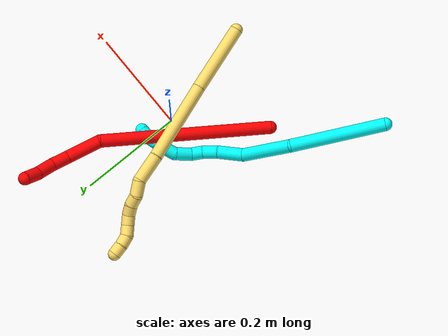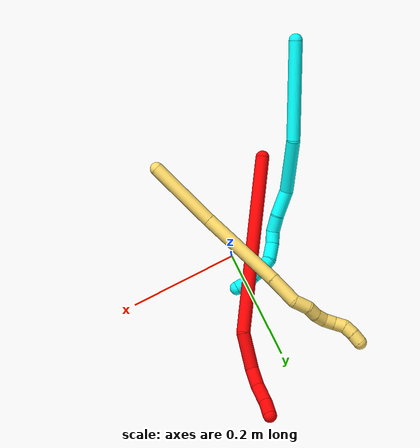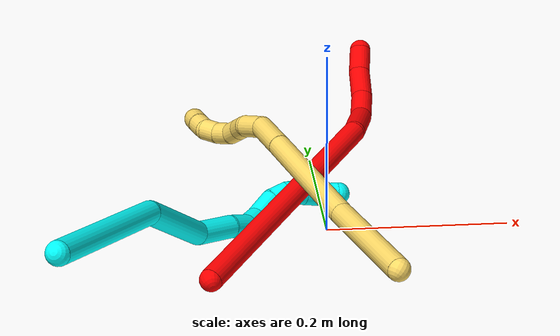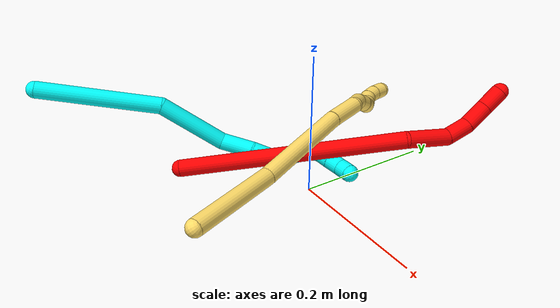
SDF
<sdf version="1.7">
 <world name="default">
  <model name="photoneo_s_sensor">
   <static>1</static>
   <pose>0 0 2 1.57079 1.57079 3.14159</pose>
   <link name="link">
    <inertial><mass>0.1</mass></inertial>
    <sensor name="sensor" type="depth">
     <update_rate>30</update_rate>
     <camera>
      <horizontal_fov>1.22</horizontal_fov>
      <image><width>1920</width><height>1200</height><format>B8G8R8</format></image>
      <clip><near>0.1</near><far>4</far></clip>
      <depth_camera><output>points</output></depth_camera>
     </camera>
     <plugin name="camera_plugin" filename="libgazebo_ros_depth_camera.so">
      <baseline>0.2</baseline>
      <alwaysOn>1</alwaysOn>
      <updateRate>0.0</updateRate>
      <cameraName>camera_ir</cameraName>
      <imageTopicName>/camera/color/image_raw</imageTopicName>
      <cameraInfoTopicName>/camera/color/camera_info</cameraInfoTopicName>
      <depthImageTopicName>/camera/depth/image_raw</depthImageTopicName>
      <depthImageCameraInfoTopicName>/camera/depth/camera_info</depthImageCameraInfoTopicName>
      <pointCloudTopicName>/camera/depth/points</pointCloudTopicName>
      <frameName>fr_optical</frameName>
      <pointCloudCutoff>0.1</pointCloudCutoff>
      <pointCloudCutoffMax>2.0</pointCloudCutoffMax>
      <distortionK1>0</distortionK1>
      <distortionK2>0</distortionK2>
      <distortionK3>0</distortionK3>
      <distortionT1>0</distortionT1>
      <distortionT2>0</distortionT2>
      <CxPrime>0</CxPrime>
      <Cx>0</Cx>
      <Cy>0</Cy>
      <focalLength>0</focalLength>
      <hackBaseline>0</hackBaseline>
     </plugin>
    </sensor>
   </link>
  </model>
  <model name="bin">
   <static>1</static>
   <link name="bottom">
    <collision name="collision-bottom">
     <pose>0 0 -0.01 0 -0 0</pose>
     <geometry><box><size>0.8 0.6 0.02</size></box></geometry>
     <surface>
      <friction><ode><mu>100</mu><mu2>100</mu2></ode></friction>
      <contact><collide_bitmask>65535</collide_bitmask></contact>
     </surface>
    </collision>
   </link>
   <link name="west_wall">
    <collision name="collision-west_wall">
     <pose>-0.41 0 0.1 0 -0 0</pose>
     <geometry><box><size>0.02 0.6 0.2</size></box></geometry>
     <surface>
      <friction><ode><mu>100</mu><mu2>100</mu2></ode></friction>
      <contact><collide_bitmask>65535</collide_bitmask></contact>
     </surface>
    </collision>
   </link>
   <link name="east_wall">
    <collision name="collision-east_wall">
     <pose>0.41 0 0.1 0 -0 0</pose>
     <geometry><box><size>0.02 0.6 0.2</size></box></geometry>
     <surface>
      <friction><ode><mu>100</mu><mu2>100</mu2></ode></friction>
      <contact><collide_bitmask>65535</collide_bitmask></contact>
     </surface>
    </collision>
   </link>
   <link name="south_wall">
    <collision name="collision-south_wall">
     <pose>0 -0.31 0.1 0 -0 0</pose>
     <geometry><box><size>0.8 0.02 0.2</size></box></geometry>
     <surface>
      <friction><ode><mu>100</mu><mu2>100</mu2></ode></friction>
      <contact><collide_bitmask>65535</collide_bitmask></contact>
     </surface>
    </collision>
   </link>
   <link name="north_wall">
    <collision name="collision-north_wall">
     <pose>0 0.31 0.1 0 -0 0</pose>
     <geometry><box><size>0.8 0.02 0.2</size></box></geometry>
     <surface>
      <friction><ode><mu>100</mu><mu2>100</mu2></ode></friction>
      <contact><collide_bitmask>65535</collide_bitmask></contact>
     </surface>
    </collision>
   </link>
  </model>
  <model name="2">
   <static>0</static>
   <link name="2">
    <collision name="collision-cylinder-e_1_1_4">
     <pose>0.087086 0.072429 0.118506 -0.548604 0.560055 -0.161498</pose>
     <geometry><cylinder><radius>0.0125</radius><length>0.327862</length></cylinder></geometry>
     <surface>
      <friction><ode><mu>1.16</mu><mu2>1.16</mu2><slip1>0</slip1><slip2>0</slip2></ode></friction>
      <contact><ode><kp>1e+06</kp><kd>1</kd><max_vel>0</max_vel><min_depth>0.001</min_depth></ode></contact>
     </surface>
    </collision>
    <visual name="visual-cylinder-e_1_1_4">
     <pose>0.087086 0.072429 0.118506 -0.548604 0.560055 -0.161498</pose>
     <geometry><cylinder><radius>0.0125</radius><length>0.327862</length></cylinder></geometry>
     <material><ambient>1 0 0 1</ambient></material>
    </visual>
    <collision name="collision-cylinder-e_2_4_5">
     <pose>0.178755 0.164386 0.264074 -0.625047 0.136496 -0.044165</pose>
     <geometry><cylinder><radius>0.0125</radius><length>0.067372</length></cylinder></geometry>
     <surface>
      <friction><ode><mu>1.16</mu><mu2>1.16</mu2><slip1>0</slip1><slip2>0</slip2></ode></friction>
      <contact><ode><kp>1e+06</kp><kd>1</kd><max_vel>0</max_vel><min_depth>0.001</min_depth></ode></contact>
     </surface>
    </collision>
    <visual name="visual-cylinder-e_2_4_5">
     <pose>0.178755 0.164386 0.264074 -0.625047 0.136496 -0.044165</pose>
     <geometry><cylinder><radius>0.0125</radius><length>0.067372</length></cylinder></geometry>
     <material><ambient>1 0 0 1</ambient></material>
    </visual>
    <collision name="collision-cylinder-e_3_5_6">
     <pose>0.187955 0.186679 0.308167 -0.161032 0.261466 -0.021218</pose>
     <geometry><cylinder><radius>0.0125</radius><length>0.035718</length></cylinder></geometry>
     <surface>
      <friction><ode><mu>1.16</mu><mu2>1.16</mu2><slip1>0</slip1><slip2>0</slip2></ode></friction>
      <contact><ode><kp>1e+06</kp><kd>1</kd><max_vel>0</max_vel><min_depth>0.001</min_depth></ode></contact>
     </surface>
    </collision>
    <visual name="visual-cylinder-e_3_5_6">
     <pose>0.187955 0.186679 0.308167 -0.161032 0.261466 -0.021218</pose>
     <geometry><cylinder><radius>0.0125</radius><length>0.035718</length></cylinder></geometry>
     <material><ambient>1 0 0 1</ambient></material>
    </visual>
    <collision name="collision-cylinder-e_4_6_7">
     <pose>0.196999 0.187576 0.343319 0.102787 0.238356 0.012319</pose>
     <geometry><cylinder><radius>0.0125</radius><length>0.0375</length></cylinder></geometry>
     <surface>
      <friction><ode><mu>1.16</mu><mu2>1.16</mu2><slip1>0</slip1><slip2>0</slip2></ode></friction>
      <contact><ode><kp>1e+06</kp><kd>1</kd><max_vel>0</max_vel><min_depth>0.001</min_depth></ode></contact>
     </surface>
    </collision>
    <visual name="visual-cylinder-e_4_6_7">
     <pose>0.196999 0.187576 0.343319 0.102787 0.238356 0.012319</pose>
     <geometry><cylinder><radius>0.0125</radius><length>0.0375</length></cylinder></geometry>
     <material><ambient>1 0 0 1</ambient></material>
    </visual>
    <collision name="collision-cylinder-e_5_7_2">
     <pose>0.20734 0.182994 0.375812 0.186572 0.384341 0.036403</pose>
     <geometry><cylinder><radius>0.0125</radius><length>0.031548</length></cylinder></geometry>
     <surface>
      <friction><ode><mu>1.16</mu><mu2>1.16</mu2><slip1>0</slip1><slip2>0</slip2></ode></friction>
      <contact><ode><kp>1e+06</kp><kd>1</kd><max_vel>0</max_vel><min_depth>0.001</min_depth></ode></contact>
     </surface>
    </collision>
    <visual name="visual-cylinder-e_5_7_2">
     <pose>0.20734 0.182994 0.375812 0.186572 0.384341 0.036403</pose>
     <geometry><cylinder><radius>0.0125</radius><length>0.031548</length></cylinder></geometry>
     <material><ambient>1 0 0 1</ambient></material>
    </visual>
    <collision name="collision-sphere-2">
     <pose>0.213254 0.180282 0.390181 0 -0 0</pose>
     <geometry><sphere><radius>0.0125</radius></sphere></geometry>
     <surface>
      <friction><ode><mu>1.16</mu><mu2>1.16</mu2><slip1>0</slip1><slip2>0</slip2></ode></friction>
      <contact><ode><kp>1e+06</kp><kd>1</kd><max_vel>0</max_vel><min_depth>0.001</min_depth></ode></contact>
     </surface>
    </collision>
    <visual name="visual-sphere-2">
     <pose>0.213254 0.180282 0.390181 0 -0 0</pose>
     <geometry><sphere><radius>0.0125</radius></sphere></geometry>
     <material><ambient>1 0 0 1</ambient></material>
    </visual>
    <collision name="collision-sphere-7">
     <pose>0.201426 0.185707 0.361443 0 -0 0</pose>
     <geometry><sphere><radius>0.0125</radius></sphere></geometry>
     <surface>
      <friction><ode><mu>1.16</mu><mu2>1.16</mu2><slip1>0</slip1><slip2>0</slip2></ode></friction>
      <contact><ode><kp>1e+06</kp><kd>1</kd><max_vel>0</max_vel><min_depth>0.001</min_depth></ode></contact>
     </surface>
    </collision>
    <visual name="visual-sphere-7">
     <pose>0.201426 0.185707 0.361443 0 -0 0</pose>
     <geometry><sphere><radius>0.0125</radius></sphere></geometry>
     <material><ambient>1 0 0 1</ambient></material>
    </visual>
    <collision name="collision-sphere-6">
     <pose>0.192572 0.189446 0.325195 0 -0 0</pose>
     <geometry><sphere><radius>0.0125</radius></sphere></geometry>
     <surface>
      <friction><ode><mu>1.16</mu><mu2>1.16</mu2><slip1>0</slip1><slip2>0</slip2></ode></friction>
      <contact><ode><kp>1e+06</kp><kd>1</kd><max_vel>0</max_vel><min_depth>0.001</min_depth></ode></contact>
     </surface>
    </collision>
    <visual name="visual-sphere-6">
     <pose>0.192572 0.189446 0.325195 0 -0 0</pose>
     <geometry><sphere><radius>0.0125</radius></sphere></geometry>
     <material><ambient>1 0 0 1</ambient></material>
    </visual>
    <collision name="collision-sphere-5">
     <pose>0.183339 0.183913 0.291138 0 -0 0</pose>
     <geometry><sphere><radius>0.0125</radius></sphere></geometry>
     <surface>
      <friction><ode><mu>1.16</mu><mu2>1.16</mu2><slip1>0</slip1><slip2>0</slip2></ode></friction>
      <contact><ode><kp>1e+06</kp><kd>1</kd><max_vel>0</max_vel><min_depth>0.001</min_depth></ode></contact>
     </surface>
    </collision>
    <visual name="visual-sphere-5">
     <pose>0.183339 0.183913 0.291138 0 -0 0</pose>
     <geometry><sphere><radius>0.0125</radius></sphere></geometry>
     <material><ambient>1 0 0 1</ambient></material>
    </visual>
    <collision name="collision-sphere-1">
     <geometry><sphere><radius>0.0125</radius></sphere></geometry>
     <surface>
      <friction><ode><mu>1.16</mu><mu2>1.16</mu2><slip1>0</slip1><slip2>0</slip2></ode></friction>
      <contact><ode><kp>1e+06</kp><kd>1</kd><max_vel>0</max_vel><min_depth>0.001</min_depth></ode></contact>
     </surface>
    </collision>
    <visual name="visual-sphere-1">
     <geometry><sphere><radius>0.0125</radius></sphere></geometry>
     <material><ambient>1 0 0 1</ambient></material>
    </visual>
    <collision name="collision-sphere-4">
     <pose>0.174171 0.144858 0.237011 0 -0 0</pose>
     <geometry><sphere><radius>0.0125</radius></sphere></geometry>
     <surface>
      <friction><ode><mu>1.16</mu><mu2>1.16</mu2><slip1>0</slip1><slip2>0</slip2></ode></friction>
      <contact><ode><kp>1e+06</kp><kd>1</kd><max_vel>0</max_vel><min_depth>0.001</min_depth></ode></contact>
     </surface>
    </collision>
    <visual name="visual-sphere-4">
     <pose>0.174171 0.144858 0.237011 0 -0 0</pose>
     <geometry><sphere><radius>0.0125</radius></sphere></geometry>
     <material><ambient>1 0 0 1</ambient></material>
    </visual>
    <inertial>
     <pose>0.122474 0.108593 0.184764 0 -0 0</pose>
     <mass>0.5</mass>
     <inertia>
      <ixx>0.002122</ixx>
      <ixy>0</ixy>
      <ixz>0</ixz>
      <iyy>0.002264</iyy>
      <iyz>0</iyz>
      <izz>-0.002864</izz>
     </inertia>
    </inertial>
   </link>
   <pose>-0.131992 -0.136514 0.011703 -1.13619 -0.463914 -0.026741</pose>
  </model>
  <model name="3">
   <static>0</static>
   <link name="3">
    <collision name="collision-cylinder-e_1_1_4">
     <pose>0.003632 0.031284 -0.084087 -2.78542 0.040457 -0.22386</pose>
     <geometry><cylinder><radius>0.0125</radius><length>0.179582</length></cylinder></geometry>
     <surface>
      <friction><ode><mu>1.16</mu><mu2>1.16</mu2><slip1>0</slip1><slip2>0</slip2></ode></friction>
      <contact><ode><kp>1e+06</kp><kd>1</kd><max_vel>0</max_vel><min_depth>0.001</min_depth></ode></contact>
     </surface>
    </collision>
    <visual name="visual-cylinder-e_1_1_4">
     <pose>0.003632 0.031284 -0.084087 -2.78542 0.040457 -0.22386</pose>
     <geometry><cylinder><radius>0.0125</radius><length>0.179582</length></cylinder></geometry>
     <material><ambient>0.003922 1 0.996078 1</ambient></material>
    </visual>
    <collision name="collision-cylinder-e_2_4_5">
     <pose>0.017989 0.060933 -0.21939 3.10969 0.206321 2.83582</pose>
     <geometry><cylinder><radius>0.0125</radius><length>0.104707</length></cylinder></geometry>
     <surface>
      <friction><ode><mu>1.16</mu><mu2>1.16</mu2><slip1>0</slip1><slip2>0</slip2></ode></friction>
      <contact><ode><kp>1e+06</kp><kd>1</kd><max_vel>0</max_vel><min_depth>0.001</min_depth></ode></contact>
     </surface>
    </collision>
    <visual name="visual-cylinder-e_2_4_5">
     <pose>0.017989 0.060933 -0.21939 3.10969 0.206321 2.83582</pose>
     <geometry><cylinder><radius>0.0125</radius><length>0.104707</length></cylinder></geometry>
     <material><ambient>0.003922 1 0.996078 1</ambient></material>
    </visual>
    <collision name="collision-cylinder-e_3_5_6">
     <pose>0.037507 0.068718 -0.291455 -2.7172 0.36695 -1.42205</pose>
     <geometry><cylinder><radius>0.0125</radius><length>0.049017</length></cylinder></geometry>
     <surface>
      <friction><ode><mu>1.16</mu><mu2>1.16</mu2><slip1>0</slip1><slip2>0</slip2></ode></friction>
      <contact><ode><kp>1e+06</kp><kd>1</kd><max_vel>0</max_vel><min_depth>0.001</min_depth></ode></contact>
     </surface>
    </collision>
    <visual name="visual-cylinder-e_3_5_6">
     <pose>0.037507 0.068718 -0.291455 -2.7172 0.36695 -1.42205</pose>
     <geometry><cylinder><radius>0.0125</radius><length>0.049017</length></cylinder></geometry>
     <material><ambient>0.003922 1 0.996078 1</ambient></material>
    </visual>
    <collision name="collision-cylinder-e_4_6_7">
     <pose>0.050759 0.081877 -0.326404 -2.88243 0.296638 -1.70717</pose>
     <geometry><cylinder><radius>0.0125</radius><length>0.030511</length></cylinder></geometry>
     <surface>
      <friction><ode><mu>1.16</mu><mu2>1.16</mu2><slip1>0</slip1><slip2>0</slip2></ode></friction>
      <contact><ode><kp>1e+06</kp><kd>1</kd><max_vel>0</max_vel><min_depth>0.001</min_depth></ode></contact>
     </surface>
    </collision>
    <visual name="visual-cylinder-e_4_6_7">
     <pose>0.050759 0.081877 -0.326404 -2.88243 0.296638 -1.70717</pose>
     <geometry><cylinder><radius>0.0125</radius><length>0.030511</length></cylinder></geometry>
     <material><ambient>0.003922 1 0.996078 1</ambient></material>
    </visual>
    <collision name="collision-cylinder-e_5_7_8">
     <pose>0.05559 0.091488 -0.350363 -2.60433 0.032399 -0.117566</pose>
     <geometry><cylinder><radius>0.0125</radius><length>0.022959</length></cylinder></geometry>
     <surface>
      <friction><ode><mu>1.16</mu><mu2>1.16</mu2><slip1>0</slip1><slip2>0</slip2></ode></friction>
      <contact><ode><kp>1e+06</kp><kd>1</kd><max_vel>0</max_vel><min_depth>0.001</min_depth></ode></contact>
     </surface>
    </collision>
    <visual name="visual-cylinder-e_5_7_8">
     <pose>0.05559 0.091488 -0.350363 -2.60433 0.032399 -0.117566</pose>
     <geometry><cylinder><radius>0.0125</radius><length>0.022959</length></cylinder></geometry>
     <material><ambient>0.003922 1 0.996078 1</ambient></material>
    </visual>
    <collision name="collision-cylinder-e_6_8_9">
     <pose>0.057525 0.109882 -0.370328 -2.24993 0.096837 -0.202087</pose>
     <geometry><cylinder><radius>0.0125</radius><length>0.032338</length></cylinder></geometry>
     <surface>
      <friction><ode><mu>1.16</mu><mu2>1.16</mu2><slip1>0</slip1><slip2>0</slip2></ode></friction>
      <contact><ode><kp>1e+06</kp><kd>1</kd><max_vel>0</max_vel><min_depth>0.001</min_depth></ode></contact>
     </surface>
    </collision>
    <visual name="visual-cylinder-e_6_8_9">
     <pose>0.057525 0.109882 -0.370328 -2.24993 0.096837 -0.202087</pose>
     <geometry><cylinder><radius>0.0125</radius><length>0.032338</length></cylinder></geometry>
     <material><ambient>0.003922 1 0.996078 1</ambient></material>
    </visual>
    <collision name="collision-cylinder-e_7_9_10">
     <pose>0.064462 0.129345 -0.385341 -2.18598 0.563869 -1.02</pose>
     <geometry><cylinder><radius>0.0125</radius><length>0.020109</length></cylinder></geometry>
     <surface>
      <friction><ode><mu>1.16</mu><mu2>1.16</mu2><slip1>0</slip1><slip2>0</slip2></ode></friction>
      <contact><ode><kp>1e+06</kp><kd>1</kd><max_vel>0</max_vel><min_depth>0.001</min_depth></ode></contact>
     </surface>
    </collision>
    <visual name="visual-cylinder-e_7_9_10">
     <pose>0.064462 0.129345 -0.385341 -2.18598 0.563869 -1.02</pose>
     <geometry><cylinder><radius>0.0125</radius><length>0.020109</length></cylinder></geometry>
     <material><ambient>0.003922 1 0.996078 1</ambient></material>
    </visual>
    <collision name="collision-cylinder-e_8_10_11">
     <pose>0.077453 0.139047 -0.396535 -2.72781 0.837025 -2.25977</pose>
     <geometry><cylinder><radius>0.0125</radius><length>0.020514</length></cylinder></geometry>
     <surface>
      <friction><ode><mu>1.16</mu><mu2>1.16</mu2><slip1>0</slip1><slip2>0</slip2></ode></friction>
      <contact><ode><kp>1e+06</kp><kd>1</kd><max_vel>0</max_vel><min_depth>0.001</min_depth></ode></contact>
     </surface>
    </collision>
    <visual name="visual-cylinder-e_8_10_11">
     <pose>0.077453 0.139047 -0.396535 -2.72781 0.837025 -2.25977</pose>
     <geometry><cylinder><radius>0.0125</radius><length>0.020514</length></cylinder></geometry>
     <material><ambient>0.003922 1 0.996078 1</ambient></material>
    </visual>
    <collision name="collision-cylinder-e_9_11_12">
     <pose>0.092406 0.144735 -0.408989 -2.69835 0.821451 -2.18666</pose>
     <geometry><cylinder><radius>0.0125</radius><length>0.020037</length></cylinder></geometry>
     <surface>
      <friction><ode><mu>1.16</mu><mu2>1.16</mu2><slip1>0</slip1><slip2>0</slip2></ode></friction>
      <contact><ode><kp>1e+06</kp><kd>1</kd><max_vel>0</max_vel><min_depth>0.001</min_depth></ode></contact>
     </surface>
    </collision>
    <visual name="visual-cylinder-e_9_11_12">
     <pose>0.092406 0.144735 -0.408989 -2.69835 0.821451 -2.18666</pose>
     <geometry><cylinder><radius>0.0125</radius><length>0.020037</length></cylinder></geometry>
     <material><ambient>0.003922 1 0.996078 1</ambient></material>
    </visual>
    <collision name="collision-cylinder-e_10_12_2">
     <pose>0.108368 0.151911 -0.418283 -2.2056 1.0219 -1.67419</pose>
     <geometry><cylinder><radius>0.0125</radius><length>0.020226</length></cylinder></geometry>
     <surface>
      <friction><ode><mu>1.16</mu><mu2>1.16</mu2><slip1>0</slip1><slip2>0</slip2></ode></friction>
      <contact><ode><kp>1e+06</kp><kd>1</kd><max_vel>0</max_vel><min_depth>0.001</min_depth></ode></contact>
     </surface>
    </collision>
    <visual name="visual-cylinder-e_10_12_2">
     <pose>0.108368 0.151911 -0.418283 -2.2056 1.0219 -1.67419</pose>
     <geometry><cylinder><radius>0.0125</radius><length>0.020226</length></cylinder></geometry>
     <material><ambient>0.003922 1 0.996078 1</ambient></material>
    </visual>
    <collision name="collision-sphere-2">
     <pose>0.116995 0.156159 -0.421412 0 -0 0</pose>
     <geometry><sphere><radius>0.0125</radius></sphere></geometry>
     <surface>
      <friction><ode><mu>1.16</mu><mu2>1.16</mu2><slip1>0</slip1><slip2>0</slip2></ode></friction>
      <contact><ode><kp>1e+06</kp><kd>1</kd><max_vel>0</max_vel><min_depth>0.001</min_depth></ode></contact>
     </surface>
    </collision>
    <visual name="visual-sphere-2">
     <pose>0.116995 0.156159 -0.421412 0 -0 0</pose>
     <geometry><sphere><radius>0.0125</radius></sphere></geometry>
     <material><ambient>0.003922 1 0.996078 1</ambient></material>
    </visual>
    <collision name="collision-sphere-12">
     <pose>0.099741 0.147662 -0.415154 0 -0 0</pose>
     <geometry><sphere><radius>0.0125</radius></sphere></geometry>
     <surface>
      <friction><ode><mu>1.16</mu><mu2>1.16</mu2><slip1>0</slip1><slip2>0</slip2></ode></friction>
      <contact><ode><kp>1e+06</kp><kd>1</kd><max_vel>0</max_vel><min_depth>0.001</min_depth></ode></contact>
     </surface>
    </collision>
    <visual name="visual-sphere-12">
     <pose>0.099741 0.147662 -0.415154 0 -0 0</pose>
     <geometry><sphere><radius>0.0125</radius></sphere></geometry>
     <material><ambient>0.003922 1 0.996078 1</ambient></material>
    </visual>
    <collision name="collision-sphere-11">
     <pose>0.085071 0.141809 -0.402824 0 -0 0</pose>
     <geometry><sphere><radius>0.0125</radius></sphere></geometry>
     <surface>
      <friction><ode><mu>1.16</mu><mu2>1.16</mu2><slip1>0</slip1><slip2>0</slip2></ode></friction>
      <contact><ode><kp>1e+06</kp><kd>1</kd><max_vel>0</max_vel><min_depth>0.001</min_depth></ode></contact>
     </surface>
    </collision>
    <visual name="visual-sphere-11">
     <pose>0.085071 0.141809 -0.402824 0 -0 0</pose>
     <geometry><sphere><radius>0.0125</radius></sphere></geometry>
     <material><ambient>0.003922 1 0.996078 1</ambient></material>
    </visual>
    <collision name="collision-sphere-10">
     <pose>0.069836 0.136285 -0.390246 0 -0 0</pose>
     <geometry><sphere><radius>0.0125</radius></sphere></geometry>
     <surface>
      <friction><ode><mu>1.16</mu><mu2>1.16</mu2><slip1>0</slip1><slip2>0</slip2></ode></friction>
      <contact><ode><kp>1e+06</kp><kd>1</kd><max_vel>0</max_vel><min_depth>0.001</min_depth></ode></contact>
     </surface>
    </collision>
    <visual name="visual-sphere-10">
     <pose>0.069836 0.136285 -0.390246 0 -0 0</pose>
     <geometry><sphere><radius>0.0125</radius></sphere></geometry>
     <material><ambient>0.003922 1 0.996078 1</ambient></material>
    </visual>
    <collision name="collision-sphere-9">
     <pose>0.059088 0.122405 -0.380437 0 -0 0</pose>
     <geometry><sphere><radius>0.0125</radius></sphere></geometry>
     <surface>
      <friction><ode><mu>1.16</mu><mu2>1.16</mu2><slip1>0</slip1><slip2>0</slip2></ode></friction>
      <contact><ode><kp>1e+06</kp><kd>1</kd><max_vel>0</max_vel><min_depth>0.001</min_depth></ode></contact>
     </surface>
    </collision>
    <visual name="visual-sphere-9">
     <pose>0.059088 0.122405 -0.380437 0 -0 0</pose>
     <geometry><sphere><radius>0.0125</radius></sphere></geometry>
     <material><ambient>0.003922 1 0.996078 1</ambient></material>
    </visual>
    <collision name="collision-sphere-4">
     <pose>0.007263 0.062567 -0.168173 0 -0 0</pose>
     <geometry><sphere><radius>0.0125</radius></sphere></geometry>
     <surface>
      <friction><ode><mu>1.16</mu><mu2>1.16</mu2><slip1>0</slip1><slip2>0</slip2></ode></friction>
      <contact><ode><kp>1e+06</kp><kd>1</kd><max_vel>0</max_vel><min_depth>0.001</min_depth></ode></contact>
     </surface>
    </collision>
    <visual name="visual-sphere-4">
     <pose>0.007263 0.062567 -0.168173 0 -0 0</pose>
     <geometry><sphere><radius>0.0125</radius></sphere></geometry>
     <material><ambient>0.003922 1 0.996078 1</ambient></material>
    </visual>
    <collision name="collision-sphere-1">
     <geometry><sphere><radius>0.0125</radius></sphere></geometry>
     <surface>
      <friction><ode><mu>1.16</mu><mu2>1.16</mu2><slip1>0</slip1><slip2>0</slip2></ode></friction>
      <contact><ode><kp>1e+06</kp><kd>1</kd><max_vel>0</max_vel><min_depth>0.001</min_depth></ode></contact>
     </surface>
    </collision>
    <visual name="visual-sphere-1">
     <geometry><sphere><radius>0.0125</radius></sphere></geometry>
     <material><ambient>0.003922 1 0.996078 1</ambient></material>
    </visual>
    <collision name="collision-sphere-8">
     <pose>0.055962 0.09736 -0.36022 0 -0 0</pose>
     <geometry><sphere><radius>0.0125</radius></sphere></geometry>
     <surface>
      <friction><ode><mu>1.16</mu><mu2>1.16</mu2><slip1>0</slip1><slip2>0</slip2></ode></friction>
      <contact><ode><kp>1e+06</kp><kd>1</kd><max_vel>0</max_vel><min_depth>0.001</min_depth></ode></contact>
     </surface>
    </collision>
    <visual name="visual-sphere-8">
     <pose>0.055962 0.09736 -0.36022 0 -0 0</pose>
     <geometry><sphere><radius>0.0125</radius></sphere></geometry>
     <material><ambient>0.003922 1 0.996078 1</ambient></material>
    </visual>
    <collision name="collision-sphere-5">
     <pose>0.028714 0.059298 -0.270608 0 -0 0</pose>
     <geometry><sphere><radius>0.0125</radius></sphere></geometry>
     <surface>
      <friction><ode><mu>1.16</mu><mu2>1.16</mu2><slip1>0</slip1><slip2>0</slip2></ode></friction>
      <contact><ode><kp>1e+06</kp><kd>1</kd><max_vel>0</max_vel><min_depth>0.001</min_depth></ode></contact>
     </surface>
    </collision>
    <visual name="visual-sphere-5">
     <pose>0.028714 0.059298 -0.270608 0 -0 0</pose>
     <geometry><sphere><radius>0.0125</radius></sphere></geometry>
     <material><ambient>0.003922 1 0.996078 1</ambient></material>
    </visual>
    <collision name="collision-sphere-6">
     <pose>0.0463 0.078138 -0.312302 0 -0 0</pose>
     <geometry><sphere><radius>0.0125</radius></sphere></geometry>
     <surface>
      <friction><ode><mu>1.16</mu><mu2>1.16</mu2><slip1>0</slip1><slip2>0</slip2></ode></friction>
      <contact><ode><kp>1e+06</kp><kd>1</kd><max_vel>0</max_vel><min_depth>0.001</min_depth></ode></contact>
     </surface>
    </collision>
    <visual name="visual-sphere-6">
     <pose>0.0463 0.078138 -0.312302 0 -0 0</pose>
     <geometry><sphere><radius>0.0125</radius></sphere></geometry>
     <material><ambient>0.003922 1 0.996078 1</ambient></material>
    </visual>
    <collision name="collision-sphere-7">
     <pose>0.055218 0.085616 -0.340506 0 -0 0</pose>
     <geometry><sphere><radius>0.0125</radius></sphere></geometry>
     <surface>
      <friction><ode><mu>1.16</mu><mu2>1.16</mu2><slip1>0</slip1><slip2>0</slip2></ode></friction>
      <contact><ode><kp>1e+06</kp><kd>1</kd><max_vel>0</max_vel><min_depth>0.001</min_depth></ode></contact>
     </surface>
    </collision>
    <visual name="visual-sphere-7">
     <pose>0.055218 0.085616 -0.340506 0 -0 0</pose>
     <geometry><sphere><radius>0.0125</radius></sphere></geometry>
     <material><ambient>0.003922 1 0.996078 1</ambient></material>
    </visual>
    <inertial>
     <pose>0.031976 0.069889 -0.229751 0 -0 0</pose>
     <mass>0.5</mass>
     <inertia>
      <ixx>0.000302</ixx>
      <ixy>0</ixy>
      <ixz>0</ixz>
      <iyy>-0.000436</iyy>
      <iyz>0</iyz>
      <izz>-0.000263</izz>
     </inertia>
    </inertial>
   </link>
   <pose>-0.274941 -0.288501 0.119423 1.03955 0.206362 -0.48667</pose>
  </model>
  <model name="5">
   <static>0</static>
   <link name="5">
    <collision name="collision-cylinder-e_1_1_4">
     <pose>0.005921 0.061892 0.025381 -1.18163 0.088282 -0.059235</pose>
     <geometry><cylinder><radius>0.0125</radius><length>0.134312</length></cylinder></geometry>
     <surface>
      <friction><ode><mu>1.16</mu><mu2>1.16</mu2><slip1>0</slip1><slip2>0</slip2></ode></friction>
      <contact><ode><kp>1e+06</kp><kd>1</kd><max_vel>0</max_vel><min_depth>0.001</min_depth></ode></contact>
     </surface>
    </collision>
    <visual name="visual-cylinder-e_1_1_4">
     <pose>0.005921 0.061892 0.025381 -1.18163 0.088282 -0.059235</pose>
     <geometry><cylinder><radius>0.0125</radius><length>0.134312</length></cylinder></geometry>
     <material><ambient>1 0.858824 0.4 1</ambient></material>
    </visual>
    <collision name="collision-cylinder-e_2_4_5">
     <pose>0.01211 0.195949 0.083529 -1.14456 0.003383 -0.002179</pose>
     <geometry><cylinder><radius>0.0125</radius><length>0.158512</length></cylinder></geometry>
     <surface>
      <friction><ode><mu>1.16</mu><mu2>1.16</mu2><slip1>0</slip1><slip2>0</slip2></ode></friction>
      <contact><ode><kp>1e+06</kp><kd>1</kd><max_vel>0</max_vel><min_depth>0.001</min_depth></ode></contact>
     </surface>
    </collision>
    <visual name="visual-cylinder-e_2_4_5">
     <pose>0.01211 0.195949 0.083529 -1.14456 0.003383 -0.002179</pose>
     <geometry><cylinder><radius>0.0125</radius><length>0.158512</length></cylinder></geometry>
     <material><ambient>1 0.858824 0.4 1</ambient></material>
    </visual>
    <collision name="collision-cylinder-e_3_5_6">
     <pose>0.015165 0.293311 0.127334 -1.15794 0.100954 -0.066025</pose>
     <geometry><cylinder><radius>0.0125</radius><length>0.055297</length></cylinder></geometry>
     <surface>
      <friction><ode><mu>1.16</mu><mu2>1.16</mu2><slip1>0</slip1><slip2>0</slip2></ode></friction>
      <contact><ode><kp>1e+06</kp><kd>1</kd><max_vel>0</max_vel><min_depth>0.001</min_depth></ode></contact>
     </surface>
    </collision>
    <visual name="visual-cylinder-e_3_5_6">
     <pose>0.015165 0.293311 0.127334 -1.15794 0.100954 -0.066025</pose>
     <geometry><cylinder><radius>0.0125</radius><length>0.055297</length></cylinder></geometry>
     <material><ambient>1 0.858824 0.4 1</ambient></material>
    </visual>
    <collision name="collision-cylinder-e_4_6_7">
     <pose>0.018854 0.332986 0.137634 -1.62166 0.0622 -0.065445</pose>
     <geometry><cylinder><radius>0.0125</radius><length>0.029052</length></cylinder></geometry>
     <surface>
      <friction><ode><mu>1.16</mu><mu2>1.16</mu2><slip1>0</slip1><slip2>0</slip2></ode></friction>
      <contact><ode><kp>1e+06</kp><kd>1</kd><max_vel>0</max_vel><min_depth>0.001</min_depth></ode></contact>
     </surface>
    </collision>
    <visual name="visual-cylinder-e_4_6_7">
     <pose>0.018854 0.332986 0.137634 -1.62166 0.0622 -0.065445</pose>
     <geometry><cylinder><radius>0.0125</radius><length>0.029052</length></cylinder></geometry>
     <material><ambient>1 0.858824 0.4 1</ambient></material>
    </visual>
    <collision name="collision-cylinder-e_5_7_8">
     <pose>0.024608 0.356778 0.136723 -1.58945 0.480142 -0.488829</pose>
     <geometry><cylinder><radius>0.0125</radius><length>0.021002</length></cylinder></geometry>
     <surface>
      <friction><ode><mu>1.16</mu><mu2>1.16</mu2><slip1>0</slip1><slip2>0</slip2></ode></friction>
      <contact><ode><kp>1e+06</kp><kd>1</kd><max_vel>0</max_vel><min_depth>0.001</min_depth></ode></contact>
     </surface>
    </collision>
    <visual name="visual-cylinder-e_5_7_8">
     <pose>0.024608 0.356778 0.136723 -1.58945 0.480142 -0.488829</pose>
     <geometry><cylinder><radius>0.0125</radius><length>0.021002</length></cylinder></geometry>
     <material><ambient>1 0.858824 0.4 1</ambient></material>
    </visual>
    <collision name="collision-cylinder-e_6_8_9">
     <pose>0.032933 0.375528 0.134396 -1.79519 0.344644 -0.429756</pose>
     <geometry><cylinder><radius>0.0125</radius><length>0.020571</length></cylinder></geometry>
     <surface>
      <friction><ode><mu>1.16</mu><mu2>1.16</mu2><slip1>0</slip1><slip2>0</slip2></ode></friction>
      <contact><ode><kp>1e+06</kp><kd>1</kd><max_vel>0</max_vel><min_depth>0.001</min_depth></ode></contact>
     </surface>
    </collision>
    <visual name="visual-cylinder-e_6_8_9">
     <pose>0.032933 0.375528 0.134396 -1.79519 0.344644 -0.429756</pose>
     <geometry><cylinder><radius>0.0125</radius><length>0.020571</length></cylinder></geometry>
     <material><ambient>1 0.858824 0.4 1</ambient></material>
    </visual>
    <collision name="collision-cylinder-e_7_9_10">
     <pose>0.036148 0.395058 0.130914 -1.70158 -0.025537 0.029115</pose>
     <geometry><cylinder><radius>0.0125</radius><length>0.020366</length></cylinder></geometry>
     <surface>
      <friction><ode><mu>1.16</mu><mu2>1.16</mu2><slip1>0</slip1><slip2>0</slip2></ode></friction>
      <contact><ode><kp>1e+06</kp><kd>1</kd><max_vel>0</max_vel><min_depth>0.001</min_depth></ode></contact>
     </surface>
    </collision>
    <visual name="visual-cylinder-e_7_9_10">
     <pose>0.036148 0.395058 0.130914 -1.70158 -0.025537 0.029115</pose>
     <geometry><cylinder><radius>0.0125</radius><length>0.020366</length></cylinder></geometry>
     <material><ambient>1 0.858824 0.4 1</ambient></material>
    </visual>
    <collision name="collision-cylinder-e_8_10_11">
     <pose>0.033877 0.415204 0.129563 -1.5731 -0.197466 0.197918</pose>
     <geometry><cylinder><radius>0.0125</radius><length>0.020505</length></cylinder></geometry>
     <surface>
      <friction><ode><mu>1.16</mu><mu2>1.16</mu2><slip1>0</slip1><slip2>0</slip2></ode></friction>
      <contact><ode><kp>1e+06</kp><kd>1</kd><max_vel>0</max_vel><min_depth>0.001</min_depth></ode></contact>
     </surface>
    </collision>
    <visual name="visual-cylinder-e_8_10_11">
     <pose>0.033877 0.415204 0.129563 -1.5731 -0.197466 0.197918</pose>
     <geometry><cylinder><radius>0.0125</radius><length>0.020505</length></cylinder></geometry>
     <material><ambient>1 0.858824 0.4 1</ambient></material>
    </visual>
    <collision name="collision-cylinder-e_9_11_12">
     <pose>0.032648 0.434662 0.132956 -1.22244 0.078069 -0.05472</pose>
     <geometry><cylinder><radius>0.0125</radius><length>0.020073</length></cylinder></geometry>
     <surface>
      <friction><ode><mu>1.16</mu><mu2>1.16</mu2><slip1>0</slip1><slip2>0</slip2></ode></friction>
      <contact><ode><kp>1e+06</kp><kd>1</kd><max_vel>0</max_vel><min_depth>0.001</min_depth></ode></contact>
     </surface>
    </collision>
    <visual name="visual-cylinder-e_9_11_12">
     <pose>0.032648 0.434662 0.132956 -1.22244 0.078069 -0.05472</pose>
     <geometry><cylinder><radius>0.0125</radius><length>0.020073</length></cylinder></geometry>
     <material><ambient>1 0.858824 0.4 1</ambient></material>
    </visual>
    <collision name="collision-cylinder-e_10_12_2">
     <pose>0.035748 0.453166 0.140239 -1.1689 0.230166 -0.152644</pose>
     <geometry><cylinder><radius>0.0125</radius><length>0.02031</length></cylinder></geometry>
     <surface>
      <friction><ode><mu>1.16</mu><mu2>1.16</mu2><slip1>0</slip1><slip2>0</slip2></ode></friction>
      <contact><ode><kp>1e+06</kp><kd>1</kd><max_vel>0</max_vel><min_depth>0.001</min_depth></ode></contact>
     </surface>
    </collision>
    <visual name="visual-cylinder-e_10_12_2">
     <pose>0.035748 0.453166 0.140239 -1.1689 0.230166 -0.152644</pose>
     <geometry><cylinder><radius>0.0125</radius><length>0.02031</length></cylinder></geometry>
     <material><ambient>1 0.858824 0.4 1</ambient></material>
    </visual>
    <collision name="collision-sphere-2">
     <pose>0.038064 0.462266 0.144106 0 -0 0</pose>
     <geometry><sphere><radius>0.0125</radius></sphere></geometry>
     <surface>
      <friction><ode><mu>1.16</mu><mu2>1.16</mu2><slip1>0</slip1><slip2>0</slip2></ode></friction>
      <contact><ode><kp>1e+06</kp><kd>1</kd><max_vel>0</max_vel><min_depth>0.001</min_depth></ode></contact>
     </surface>
    </collision>
    <visual name="visual-sphere-2">
     <pose>0.038064 0.462266 0.144106 0 -0 0</pose>
     <geometry><sphere><radius>0.0125</radius></sphere></geometry>
     <material><ambient>1 0.858824 0.4 1</ambient></material>
    </visual>
    <collision name="collision-sphere-12">
     <pose>0.033431 0.444067 0.136371 0 -0 0</pose>
     <geometry><sphere><radius>0.0125</radius></sphere></geometry>
     <surface>
      <friction><ode><mu>1.16</mu><mu2>1.16</mu2><slip1>0</slip1><slip2>0</slip2></ode></friction>
      <contact><ode><kp>1e+06</kp><kd>1</kd><max_vel>0</max_vel><min_depth>0.001</min_depth></ode></contact>
     </surface>
    </collision>
    <visual name="visual-sphere-12">
     <pose>0.033431 0.444067 0.136371 0 -0 0</pose>
     <geometry><sphere><radius>0.0125</radius></sphere></geometry>
     <material><ambient>1 0.858824 0.4 1</ambient></material>
    </visual>
    <collision name="collision-sphere-11">
     <pose>0.031865 0.425258 0.12954 0 -0 0</pose>
     <geometry><sphere><radius>0.0125</radius></sphere></geometry>
     <surface>
      <friction><ode><mu>1.16</mu><mu2>1.16</mu2><slip1>0</slip1><slip2>0</slip2></ode></friction>
      <contact><ode><kp>1e+06</kp><kd>1</kd><max_vel>0</max_vel><min_depth>0.001</min_depth></ode></contact>
     </surface>
    </collision>
    <visual name="visual-sphere-11">
     <pose>0.031865 0.425258 0.12954 0 -0 0</pose>
     <geometry><sphere><radius>0.0125</radius></sphere></geometry>
     <material><ambient>1 0.858824 0.4 1</ambient></material>
    </visual>
    <collision name="collision-sphere-10">
     <pose>0.035888 0.405151 0.129587 0 -0 0</pose>
     <geometry><sphere><radius>0.0125</radius></sphere></geometry>
     <surface>
      <friction><ode><mu>1.16</mu><mu2>1.16</mu2><slip1>0</slip1><slip2>0</slip2></ode></friction>
      <contact><ode><kp>1e+06</kp><kd>1</kd><max_vel>0</max_vel><min_depth>0.001</min_depth></ode></contact>
     </surface>
    </collision>
    <visual name="visual-sphere-10">
     <pose>0.035888 0.405151 0.129587 0 -0 0</pose>
     <geometry><sphere><radius>0.0125</radius></sphere></geometry>
     <material><ambient>1 0.858824 0.4 1</ambient></material>
    </visual>
    <collision name="collision-sphere-9">
     <pose>0.036408 0.384966 0.132242 0 -0 0</pose>
     <geometry><sphere><radius>0.0125</radius></sphere></geometry>
     <surface>
      <friction><ode><mu>1.16</mu><mu2>1.16</mu2><slip1>0</slip1><slip2>0</slip2></ode></friction>
      <contact><ode><kp>1e+06</kp><kd>1</kd><max_vel>0</max_vel><min_depth>0.001</min_depth></ode></contact>
     </surface>
    </collision>
    <visual name="visual-sphere-9">
     <pose>0.036408 0.384966 0.132242 0 -0 0</pose>
     <geometry><sphere><radius>0.0125</radius></sphere></geometry>
     <material><ambient>1 0.858824 0.4 1</ambient></material>
    </visual>
    <collision name="collision-sphere-4">
     <pose>0.011842 0.123785 0.050761 0 -0 0</pose>
     <geometry><sphere><radius>0.0125</radius></sphere></geometry>
     <surface>
      <friction><ode><mu>1.16</mu><mu2>1.16</mu2><slip1>0</slip1><slip2>0</slip2></ode></friction>
      <contact><ode><kp>1e+06</kp><kd>1</kd><max_vel>0</max_vel><min_depth>0.001</min_depth></ode></contact>
     </surface>
    </collision>
    <visual name="visual-sphere-4">
     <pose>0.011842 0.123785 0.050761 0 -0 0</pose>
     <geometry><sphere><radius>0.0125</radius></sphere></geometry>
     <material><ambient>1 0.858824 0.4 1</ambient></material>
    </visual>
    <collision name="collision-sphere-1">
     <geometry><sphere><radius>0.0125</radius></sphere></geometry>
     <surface>
      <friction><ode><mu>1.16</mu><mu2>1.16</mu2><slip1>0</slip1><slip2>0</slip2></ode></friction>
      <contact><ode><kp>1e+06</kp><kd>1</kd><max_vel>0</max_vel><min_depth>0.001</min_depth></ode></contact>
     </surface>
    </collision>
    <visual name="visual-sphere-1">
     <geometry><sphere><radius>0.0125</radius></sphere></geometry>
     <material><ambient>1 0.858824 0.4 1</ambient></material>
    </visual>
    <collision name="collision-sphere-8">
     <pose>0.029458 0.36609 0.13655 0 -0 0</pose>
     <geometry><sphere><radius>0.0125</radius></sphere></geometry>
     <surface>
      <friction><ode><mu>1.16</mu><mu2>1.16</mu2><slip1>0</slip1><slip2>0</slip2></ode></friction>
      <contact><ode><kp>1e+06</kp><kd>1</kd><max_vel>0</max_vel><min_depth>0.001</min_depth></ode></contact>
     </surface>
    </collision>
    <visual name="visual-sphere-8">
     <pose>0.029458 0.36609 0.13655 0 -0 0</pose>
     <geometry><sphere><radius>0.0125</radius></sphere></geometry>
     <material><ambient>1 0.858824 0.4 1</ambient></material>
    </visual>
    <collision name="collision-sphere-5">
     <pose>0.012378 0.268114 0.116297 0 -0 0</pose>
     <geometry><sphere><radius>0.0125</radius></sphere></geometry>
     <surface>
      <friction><ode><mu>1.16</mu><mu2>1.16</mu2><slip1>0</slip1><slip2>0</slip2></ode></friction>
      <contact><ode><kp>1e+06</kp><kd>1</kd><max_vel>0</max_vel><min_depth>0.001</min_depth></ode></contact>
     </surface>
    </collision>
    <visual name="visual-sphere-5">
     <pose>0.012378 0.268114 0.116297 0 -0 0</pose>
     <geometry><sphere><radius>0.0125</radius></sphere></geometry>
     <material><ambient>1 0.858824 0.4 1</ambient></material>
    </visual>
    <collision name="collision-sphere-6">
     <pose>0.017951 0.318507 0.138371 0 -0 0</pose>
     <geometry><sphere><radius>0.0125</radius></sphere></geometry>
     <surface>
      <friction><ode><mu>1.16</mu><mu2>1.16</mu2><slip1>0</slip1><slip2>0</slip2></ode></friction>
      <contact><ode><kp>1e+06</kp><kd>1</kd><max_vel>0</max_vel><min_depth>0.001</min_depth></ode></contact>
     </surface>
    </collision>
    <visual name="visual-sphere-6">
     <pose>0.017951 0.318507 0.138371 0 -0 0</pose>
     <geometry><sphere><radius>0.0125</radius></sphere></geometry>
     <material><ambient>1 0.858824 0.4 1</ambient></material>
    </visual>
    <collision name="collision-sphere-7">
     <pose>0.019757 0.347466 0.136897 0 -0 0</pose>
     <geometry><sphere><radius>0.0125</radius></sphere></geometry>
     <surface>
      <friction><ode><mu>1.16</mu><mu2>1.16</mu2><slip1>0</slip1><slip2>0</slip2></ode></friction>
      <contact><ode><kp>1e+06</kp><kd>1</kd><max_vel>0</max_vel><min_depth>0.001</min_depth></ode></contact>
     </surface>
    </collision>
    <visual name="visual-sphere-7">
     <pose>0.019757 0.347466 0.136897 0 -0 0</pose>
     <geometry><sphere><radius>0.0125</radius></sphere></geometry>
     <material><ambient>1 0.858824 0.4 1</ambient></material>
    </visual>
    <inertial>
     <pose>0.016215 0.229945 0.08833 0 -0 0</pose>
     <mass>0.5</mass>
     <inertia>
      <ixx>0.000559</ixx>
      <ixy>0</ixy>
      <ixz>0</ixz>
      <iyy>0.000248</iyy>
      <iyz>0</iyz>
      <izz>-0.000537</izz>
     </inertia>
    </inertial>
   </link>
   <pose>0.05081 -0.201945 0.046879 -0.233864 0.834519 0.497175</pose>
  </model>
 </world>
</sdf>
